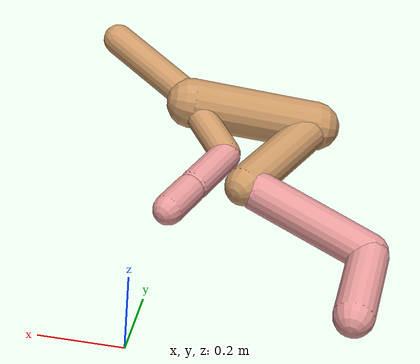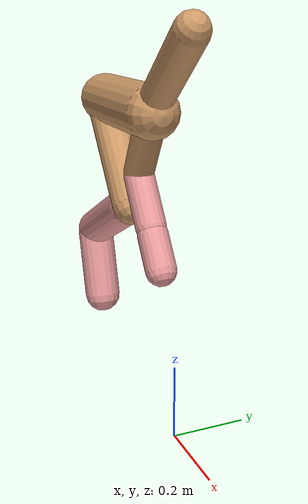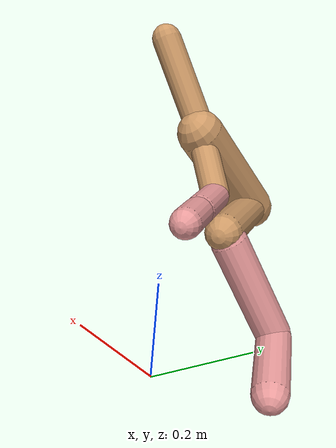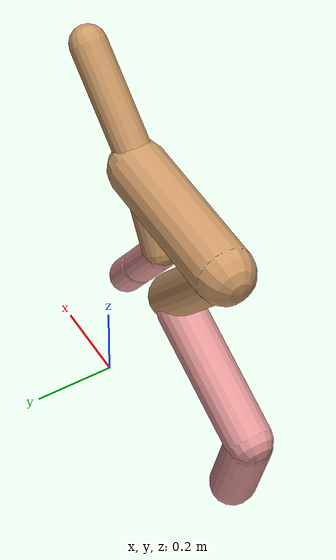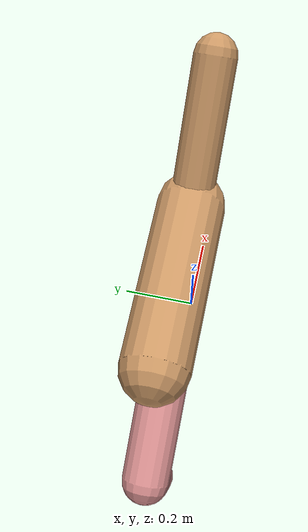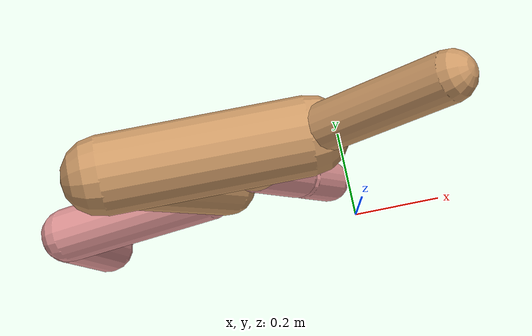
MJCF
<mujoco model="cheetah">
  <compiler angle="radian" coordinate="local" inertiafromgeom="true" settotalmass="14" />
  <default>
    <joint armature=".1" damping=".01" limited="true" solimplimit="0 .8 .03" solreflimit=".02 1" stiffness="8" />
    <geom conaffinity="0" condim="3" contype="1" friction="0.8 .1 .1" rgba="0.8 0.6 .4 1" solimp="0.0 0.8 0.01" solref="0.02 1" />
    <motor ctrllimited="true" ctrlrange="-1 1" />
  </default>
  <size nstack="300000" nuser_geom="1" />
  <option gravity="0 0 -9.81" timestep="0.01" />
  <worldbody>
    <body name="torso" pos="0.0 0.0 0.8234668291848509">
      <joint armature="0" axis="1 0 0" damping="0" limited="false" name="ignorex" pos="0 0 0" stiffness="0" type="slide" />
      <joint armature="0" axis="0 0 1" damping="0" limited="false" name="ignorez" pos="0 0 0" stiffness="0" type="slide" />
      <joint armature="0" axis="0 1 0" damping="0" limited="false" name="ignorey" pos="0 0 0" stiffness="0" type="hinge" />
      <geom fromto="-0.5 0.0 0.0 -0.144357337600034 0.0 0.0" name="torso" size="0.06918565853527261" type="capsule" />
      <geom axisangle="0 1 0 .87" name="head" pos="-0.04435733760003402 0.0 0.1" size="0.042944060168373294 0.15" type="capsule" />

      <body name="bthigh" pos="-.5 0 0">
        <joint axis="0 1 0" damping="6" name="bthigh" pos="0 0 0" range="-.52 1.05" stiffness="240" type="hinge" />
        <geom axisangle="0 1 0 -3.8" name="bthigh" pos="0.10925039227329594 0.0 -0.1420255099552847" size="0.054278425559040576 0.16017177138288421" type="capsule" />
        <body name="bshin" pos="0.17850078454659185 0.0 -0.2740510199105694">
          <joint axis="0 1 0" damping="4.5" name="bshin" pos="0 0 0" range="-.785 .785" stiffness="180" type="hinge" />
          <geom axisangle="0 1 0 -2.03" name="bshin" pos="-0.15403797744188213 0.0 -0.07701898872094107" rgba="0.9 0.6 0.6 1" size="0.054278425559040576 0.16569493591332848" type="capsule" />
          <body name="bfoot" pos="-0.30807595488376427 0.0 -0.15403797744188213">
            <joint axis="0 1 0" damping="3" name="bfoot" pos="0 0 0" range="-.4 .785" stiffness="120" type="hinge" />
            <geom axisangle="0 1 0 -.27" name="bfoot" pos="0.03290609044243689 0.0 -0.10639635909721262" rgba="0.9 0.6 0.6 1" size="0.054278425559040576 0.10383549317235252" type="capsule" />
            <inertial mass="10" />
          </body>
        </body>
      </body>
      <body name="fthigh" pos="-0.144357337600034 0.0 0.0">
        <joint axis="0 1 0" damping="4.5" name="fthigh" pos="0 0 0" range="-1.5 0.8" stiffness="180" type="hinge" />
        <geom axisangle="0 1 0 .52" name="fthigh" pos="-0.04989554608158897 0.0 -0.0855352218541525" size="0.04111812272943117 0.0931" type="capsule" />
        <body name="fshin" pos="-0.09979109216317794 0.0 -0.171070443708305">
          <joint axis="0 1 0" damping="3" name="fshin" pos="0 0 0" range="-1.2 1.1" stiffness="120" type="hinge" />
          <geom axisangle="0 1 0 -.6" name="fshin" pos="0.046381400387749405 0.0 -0.06422040053688378" rgba="0.9 0.6 0.6 1" size="0.04111812272943117 0.07419999999999999" type="capsule" />
          <body name="ffoot" pos="0.09276280077549881 0.0 -0.12844080107376757">
            <joint axis="0 1 0" damping="1.5" name="ffoot" pos="0 0 0" range="-3.1 -0.3" stiffness="60" type="hinge" />
            <geom axisangle="0 1 0 -.6" name="ffoot" pos="0.033644090582416526 0.0 -0.05233525201709238" rgba="0.9 0.6 0.6 1" size="0.04111812272943117 0.049" type="capsule" />
            <inertial mass="10" />
          </body>
        </body>
      </body>
    </body>
  </worldbody>
  <actuator>
    <motor gear="120" joint="bthigh" name="bthigh" />
    <motor gear="90" joint="bshin" name="bshin" />
    <motor gear="60" joint="bfoot" name="bfoot" />
    <motor gear="120" joint="fthigh" name="fthigh" />
    <motor gear="60" joint="fshin" name="fshin" />
    <motor gear="30" joint="ffoot" name="ffoot" />
  </actuator>
</mujoco>
